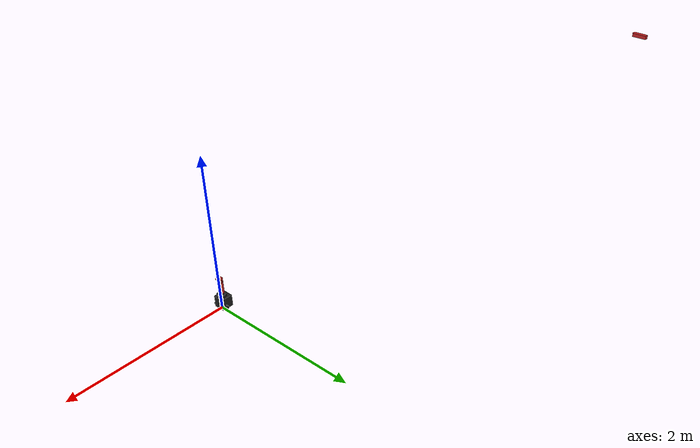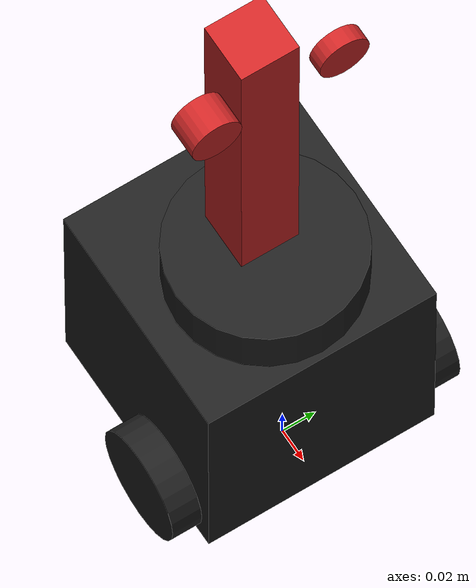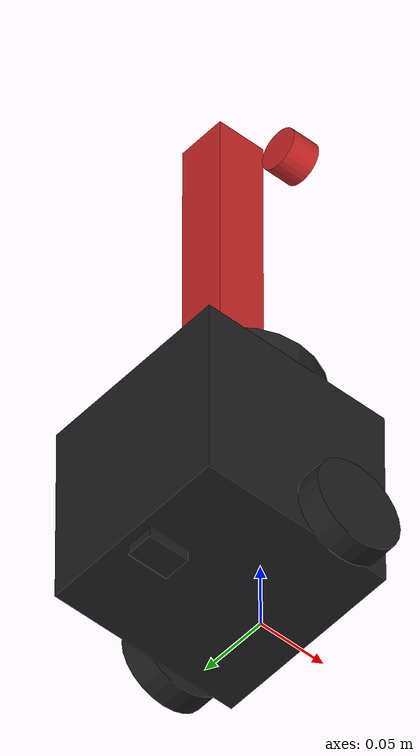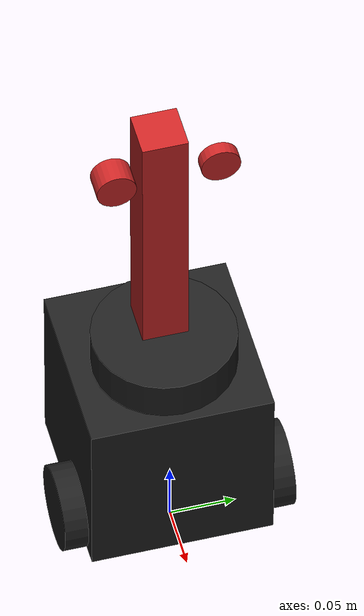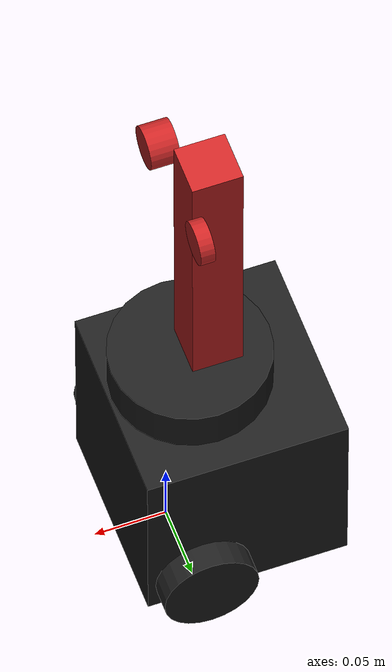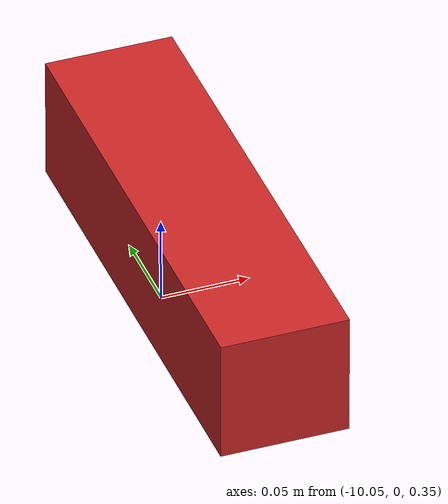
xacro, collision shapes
<?xml version="1.0" ?>
<robot name="turtlebot3_burger" xmlns:xacro="http://ros.org/wiki/xacro">
  <xacro:include filename="$(find environments)/robots/turtlebot3_burger_1/common_properties.xacro"/>
  <xacro:include filename="$(find environments)/robots/turtlebot3_burger_1/turtlebot3_burger.gazebo.xacro"/>

  <link name="base_footprint"/>

  <joint name="base_joint" type="fixed">
    <parent link="base_footprint"/>
    <child link="base_link"/>
    <origin xyz="0.0 0.0 0.010" rpy="0 0 0"/>
  </joint>

  <link name="base_link">
    <visual>
      <origin xyz="-0.032 0 0.0" rpy="0 0 0"/>
      <geometry>
        <mesh filename="package://turtlebot3_description/meshes/bases/burger_base.stl" scale="0.001 0.001 0.001"/>
      </geometry>
      <material name="light_black"/>
    </visual>

    <collision>
      <origin xyz="-0.032 0 0.070" rpy="0 0 0"/>
      <geometry>
        <box size="0.140 0.140 0.143"/>
      </geometry>
    </collision>

    <inertial>
      <origin xyz="0 0 0" rpy="0 0 0"/>
      <mass value="8.2573504e-01"/>
      <inertia ixx="2.2124416e-03" ixy="-1.2294101e-05" ixz="3.4938785e-05"
               iyy="2.1193702e-03" iyz="-5.0120904e-06"
               izz="2.0064271e-03" />
    </inertial>
  </link>

  <joint name="wheel_left_joint" type="continuous">
    <parent link="base_link"/>
    <child link="wheel_left_link"/>
    <origin xyz="0.0 0.08 0.023" rpy="-1.57 0 0"/>
    <axis xyz="0 0 1"/>
  </joint>

  <link name="wheel_left_link">
    <visual>
      <origin xyz="0 0 0" rpy="1.57 0 0"/>
      <geometry>
        <mesh filename="package://turtlebot3_description/meshes/wheels/left_tire.stl" scale="0.001 0.001 0.001"/>
      </geometry>
      <material name="dark"/>
    </visual>

    <collision>
      <origin xyz="0 0 0" rpy="0 0 0"/>
      <geometry>
        <cylinder length="0.018" radius="0.033"/>
      </geometry>
    </collision>

    <inertial>
      <origin xyz="0 0 0" />
      <mass value="2.8498940e-02" />
      <inertia ixx="1.1175580e-05" ixy="-4.2369783e-11" ixz="-5.9381719e-09"
               iyy="1.1192413e-05" iyz="-1.4400107e-11"
               izz="2.0712558e-05" />
      </inertial>
  </link>

  <joint name="wheel_right_joint" type="continuous">
    <parent link="base_link"/>
    <child link="wheel_right_link"/>
    <origin xyz="0.0 -0.080 0.023" rpy="-1.57 0 0"/>
    <axis xyz="0 0 1"/>
  </joint>

  <link name="wheel_right_link">
    <visual>
      <origin xyz="0 0 0" rpy="1.57 0 0"/>
      <geometry>
        <mesh filename="package://turtlebot3_description/meshes/wheels/right_tire.stl" scale="0.001 0.001 0.001"/>
      </geometry>
      <material name="dark"/>
    </visual>

    <collision>
      <origin xyz="0 0 0" rpy="0 0 0"/>
      <geometry>
        <cylinder length="0.018" radius="0.033"/>
      </geometry>
    </collision>

    <inertial>
      <origin xyz="0 0 0" />
      <mass value="2.8498940e-02" />
      <inertia ixx="1.1175580e-05" ixy="-4.2369783e-11" ixz="-5.9381719e-09"
               iyy="1.1192413e-05" iyz="-1.4400107e-11"
               izz="2.0712558e-05" />
      </inertial>
  </link>

  <joint name="caster_back_joint" type="fixed">
    <parent link="base_link"/>
    <child link="caster_back_link"/>
    <origin xyz="-0.081 0 -0.004" rpy="-1.57 0 0"/>
  </joint>

  <link name="caster_back_link">
    <collision>
      <origin xyz="0 0.001 0" rpy="0 0 0"/>
      <geometry>
        <box size="0.030 0.009 0.020"/>
      </geometry>
    </collision>

    <inertial>
      <origin xyz="0 0 0" />
      <mass value="0.005" />
      <inertia ixx="0.001" ixy="0.0" ixz="0.0"
               iyy="0.001" iyz="0.0"
               izz="0.001" />
    </inertial>
  </link>

  <joint name="imu_joint" type="fixed">
    <parent link="base_link"/>
    <child link="imu_link"/>
    <origin xyz="-0.032 0 0.068" rpy="0 0 0"/>
  </joint>

  <link name="imu_link"/>

  <joint name="scan_joint" type="fixed">
    <parent link="base_link"/>
    <child link="base_scan"/>
    <origin xyz="-0.032 0 0.172" rpy="0 0 0"/>
  </joint>

  <link name="base_scan">
    <visual>
      <origin xyz="0 0 0.0" rpy="0 0 0"/>
      <geometry>
        <mesh filename="package://turtlebot3_description/meshes/sensors/lds.stl" scale="0.001 0.001 0.001"/>
      </geometry>
      <material name="dark"/>
    </visual>

    <collision>
      <origin xyz="0.015 0 -0.0065" rpy="0 0 0"/>
      <geometry>
        <cylinder length="0.0315" radius="0.055"/>
      </geometry>
    </collision>

    <inertial>
      <mass value="0.114" />
      <origin xyz="0 0 0" />
      <inertia ixx="0.001" ixy="0.0" ixz="0.0"
               iyy="0.001" iyz="0.0"
               izz="0.001" />
    </inertial>
  </link>
<!-- Adding the support -->
  <joint name="suport_joint" type="fixed">
    <parent link="base_link"/>
    <child link="support"/>
    <origin xyz="-0.030 0 0.269" rpy="0 0 0"/>
  </joint>

  <link name="support">
    <collision>
      <origin xyz="0 0 0" rpy="0 0 0"/>
      <geometry>
        <box size="0.035 0.035 0.250"/>
      </geometry>
    </collision>

    <visual>
      <origin xyz="0 0 0" rpy="0 0 0"/>
      <geometry>
        <box size="0.035 0.035 0.162"/>
      </geometry>
      <material name="red"/>
    </visual>

    <inertial>
      <mass value="1e-5" />
      <origin xyz="0 0 0" rpy="0 0 0"/>
      <inertia ixx="0.001" ixy="0" ixz="0" iyy="1e-6" iyz="0" izz="0.001" />
    </inertial>
  </link>

<!-- Adding the camera_form_1 -->
  <joint name="camera_form_1_joint" type="fixed">
    <parent link="base_link"/>
    <child link="camera_form_1"/>
    <origin xyz="-0.01 0.04 0.370" rpy="0 1.57 0"/>
  </joint>

  <link name="camera_form_1">
    <collision>
      <origin xyz="0 0 0" rpy="0 0 0"/>
      <geometry>
        <cylinder length="0.01" radius="0.015"/>
      </geometry>
    </collision>

    <visual>
      <origin xyz="0 0 0" rpy="0 0 0"/>
      <geometry>
        <cylinder length="0.01" radius="0.015"/>
      </geometry>
      <material name="red"/>
    </visual>

    <inertial>
      <mass value="1e-5" />
      <origin xyz="0 0 0" rpy="0 0 0"/>
      <inertia ixx="0.001" ixy="0" ixz="0" iyy="1e-6" iyz="0" izz="0.001" />
    </inertial>
  </link>

<!-- Adding the camera_form_2 -->
  <joint name="camera_form_2_joint" type="fixed">
    <parent link="base_link"/>
    <child link="camera_form_2"/>
    <origin xyz="-0.01 -0.04 0.370" rpy="0 1.57 0"/>
  </joint>

  <link name="camera_form_2">
    <collision>
      <origin xyz="0 0 0" rpy="0 0 0"/>
      <geometry>
        <cylinder length="0.02" radius="0.015"/>
      </geometry>
    </collision>

    <visual>
      <origin xyz="0 0 0" rpy="0 0 0"/>
      <geometry>
        <cylinder length="0.01" radius="0.015"/>
      </geometry>
      <material name="red"/>
    </visual>

    <inertial>
      <mass value="1e-5" />
      <origin xyz="0 0 0" rpy="0 0 0"/>
      <inertia ixx="0.001" ixy="0" ixz="0" iyy="1e-6" iyz="0" izz="0.001" />
    </inertial>
  </link>

 <!-- Adding for kinect -->
  <joint name="camera_joint" type="fixed">
    <!--axis xyz="0 0 0" /-->
    <parent link="base_link"/>
    <child link="camera_link"/>
    <origin xyz="-0.030 0 0.370" rpy="0 0 0"/>
  </joint>

  <link name="camera_link">
    <collision>
      <origin xyz="-10 0 0" rpy="0 0 0"/>
      <geometry>
        <box size="0.073000 0.276000 0.072000"/>
      </geometry>
    </collision>

    <visual>
      <origin xyz="0 0 0" rpy="0 0 0"/>
      <geometry>
         <!--mesh filename="package://turtlebot3_description/meshes/sensors/kinect.dae" scale="0.8 0.8 0.8"/-->
	<box size="0.033 0.125 0.033"/>
      </geometry>
      <material name="red"/>
    </visual>

    <inertial>
      <mass value="1e-5" />
      <origin xyz="0 0 0" rpy="0 0 0"/>
      <inertia ixx="0.001" ixy="0" ixz="0" iyy="1e-6" iyz="0" izz="0.001" />
    </inertial>
  </link>

</robot>
